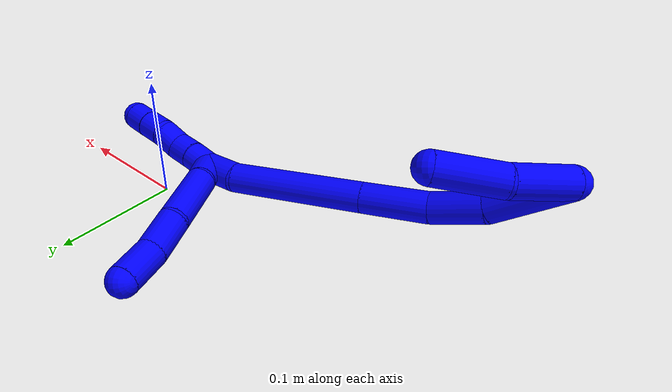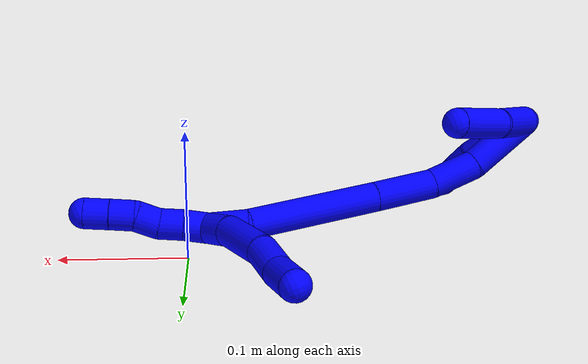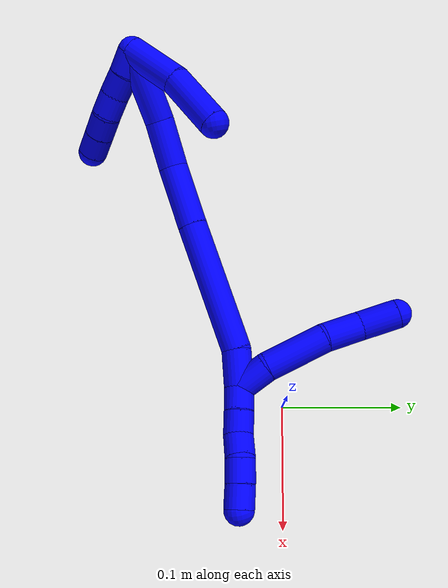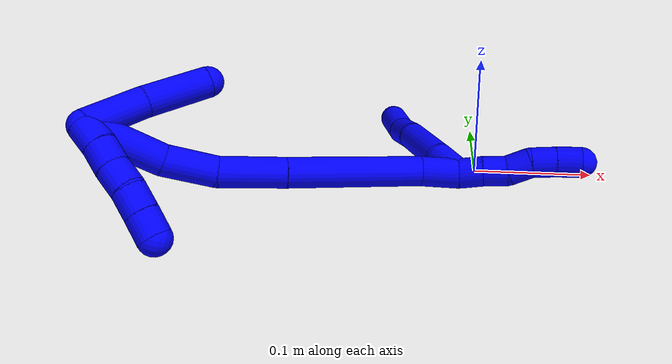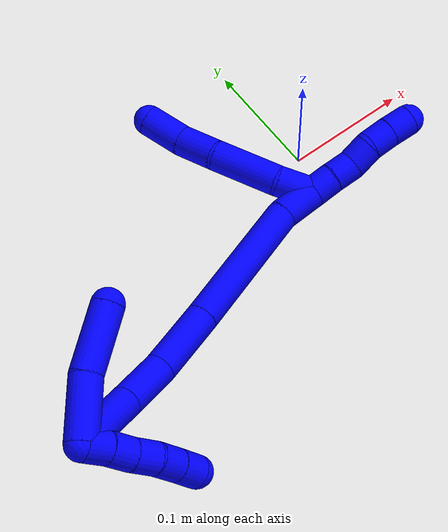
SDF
<sdf version="1.7">
 <world name="default">
  <model name="photoneo_s_sensor">
   <static>1</static>
   <pose>0 0 2 1.57079 1.57079 3.14159</pose>
   <link name="link">
    <inertial><mass>0.1</mass></inertial>
    <sensor name="sensor" type="depth">
     <update_rate>30</update_rate>
     <camera>
      <horizontal_fov>1.22</horizontal_fov>
      <image><width>1920</width><height>1200</height><format>B8G8R8</format></image>
      <clip><near>0.1</near><far>4</far></clip>
      <depth_camera><output>points</output></depth_camera>
     </camera>
     <plugin name="camera_plugin" filename="libgazebo_ros_depth_camera.so">
      <baseline>0.2</baseline>
      <alwaysOn>1</alwaysOn>
      <updateRate>0.0</updateRate>
      <cameraName>camera_ir</cameraName>
      <imageTopicName>/camera/color/image_raw</imageTopicName>
      <cameraInfoTopicName>/camera/color/camera_info</cameraInfoTopicName>
      <depthImageTopicName>/camera/depth/image_raw</depthImageTopicName>
      <depthImageCameraInfoTopicName>/camera/depth/camera_info</depthImageCameraInfoTopicName>
      <pointCloudTopicName>/camera/depth/points</pointCloudTopicName>
      <frameName>fr_optical</frameName>
      <pointCloudCutoff>0.1</pointCloudCutoff>
      <pointCloudCutoffMax>2.0</pointCloudCutoffMax>
      <distortionK1>0</distortionK1>
      <distortionK2>0</distortionK2>
      <distortionK3>0</distortionK3>
      <distortionT1>0</distortionT1>
      <distortionT2>0</distortionT2>
      <CxPrime>0</CxPrime>
      <Cx>0</Cx>
      <Cy>0</Cy>
      <focalLength>0</focalLength>
      <hackBaseline>0</hackBaseline>
     </plugin>
    </sensor>
   </link>
  </model>
  <model name="bin">
   <static>1</static>
   <link name="bottom">
    <collision name="collision-bottom">
     <pose>0 0 -0.01 0 -0 0</pose>
     <geometry><box><size>0.8 0.6 0.02</size></box></geometry>
     <surface>
      <friction><ode><mu>100</mu><mu2>100</mu2></ode></friction>
      <contact><collide_bitmask>65535</collide_bitmask></contact>
     </surface>
    </collision>
   </link>
   <link name="west_wall">
    <collision name="collision-west_wall">
     <pose>-0.41 0 0.1 0 -0 0</pose>
     <geometry><box><size>0.02 0.6 0.2</size></box></geometry>
     <surface>
      <friction><ode><mu>100</mu><mu2>100</mu2></ode></friction>
      <contact><collide_bitmask>65535</collide_bitmask></contact>
     </surface>
    </collision>
   </link>
   <link name="east_wall">
    <collision name="collision-east_wall">
     <pose>0.41 0 0.1 0 -0 0</pose>
     <geometry><box><size>0.02 0.6 0.2</size></box></geometry>
     <surface>
      <friction><ode><mu>100</mu><mu2>100</mu2></ode></friction>
      <contact><collide_bitmask>65535</collide_bitmask></contact>
     </surface>
    </collision>
   </link>
   <link name="south_wall">
    <collision name="collision-south_wall">
     <pose>0 -0.31 0.1 0 -0 0</pose>
     <geometry><box><size>0.8 0.02 0.2</size></box></geometry>
     <surface>
      <friction><ode><mu>100</mu><mu2>100</mu2></ode></friction>
      <contact><collide_bitmask>65535</collide_bitmask></contact>
     </surface>
    </collision>
   </link>
   <link name="north_wall">
    <collision name="collision-north_wall">
     <pose>0 0.31 0.1 0 -0 0</pose>
     <geometry><box><size>0.8 0.02 0.2</size></box></geometry>
     <surface>
      <friction><ode><mu>100</mu><mu2>100</mu2></ode></friction>
      <contact><collide_bitmask>65535</collide_bitmask></contact>
     </surface>
    </collision>
   </link>
  </model>
  <model name="1">
   <static>0</static>
   <link name="1">
    <collision name="collision-cylinder-e_1_2_8">
     <pose>-0.002292 0.012868 0.006302 -1.11541 -0.158599 0.099054</pose>
     <geometry><cylinder><radius>0.0125</radius><length>0.029021</length></cylinder></geometry>
     <surface>
      <friction><ode><mu>1.16</mu><mu2>1.16</mu2><slip1>0</slip1><slip2>0</slip2></ode></friction>
      <contact><ode><kp>1e+06</kp><kd>1</kd><max_vel>0</max_vel><min_depth>0.001</min_depth></ode></contact>
     </surface>
    </collision>
    <visual name="visual-cylinder-e_1_2_8">
     <pose>-0.002292 0.012868 0.006302 -1.11541 -0.158599 0.099054</pose>
     <geometry><cylinder><radius>0.0125</radius><length>0.029021</length></cylinder></geometry>
     <material><ambient>0 0 1 1</ambient></material>
    </visual>
    <collision name="collision-cylinder-e_2_8_9">
     <pose>-0.012045 0.051053 0.019164 -1.31725 -0.277919 0.21564</pose>
     <geometry><cylinder><radius>0.0125</radius><length>0.054392</length></cylinder></geometry>
     <surface>
      <friction><ode><mu>1.16</mu><mu2>1.16</mu2><slip1>0</slip1><slip2>0</slip2></ode></friction>
      <contact><ode><kp>1e+06</kp><kd>1</kd><max_vel>0</max_vel><min_depth>0.001</min_depth></ode></contact>
     </surface>
    </collision>
    <visual name="visual-cylinder-e_2_8_9">
     <pose>-0.012045 0.051053 0.019164 -1.31725 -0.277919 0.21564</pose>
     <geometry><cylinder><radius>0.0125</radius><length>0.054392</length></cylinder></geometry>
     <material><ambient>0 0 1 1</ambient></material>
    </visual>
    <collision name="collision-cylinder-e_3_9_10">
     <pose>-0.026168 0.091348 0.026881 -1.49365 -0.417395 0.387174</pose>
     <geometry><cylinder><radius>0.0125</radius><length>0.032868</length></cylinder></geometry>
     <surface>
      <friction><ode><mu>1.16</mu><mu2>1.16</mu2><slip1>0</slip1><slip2>0</slip2></ode></friction>
      <contact><ode><kp>1e+06</kp><kd>1</kd><max_vel>0</max_vel><min_depth>0.001</min_depth></ode></contact>
     </surface>
    </collision>
    <visual name="visual-cylinder-e_3_9_10">
     <pose>-0.026168 0.091348 0.026881 -1.49365 -0.417395 0.387174</pose>
     <geometry><cylinder><radius>0.0125</radius><length>0.032868</length></cylinder></geometry>
     <material><ambient>0 0 1 1</ambient></material>
    </visual>
    <collision name="collision-cylinder-e_4_10_6">
     <pose>-0.036175 0.122742 0.029933 -1.45594 -0.199719 0.178125</pose>
     <geometry><cylinder><radius>0.0125</radius><length>0.033718</length></cylinder></geometry>
     <surface>
      <friction><ode><mu>1.16</mu><mu2>1.16</mu2><slip1>0</slip1><slip2>0</slip2></ode></friction>
      <contact><ode><kp>1e+06</kp><kd>1</kd><max_vel>0</max_vel><min_depth>0.001</min_depth></ode></contact>
     </surface>
    </collision>
    <visual name="visual-cylinder-e_4_10_6">
     <pose>-0.036175 0.122742 0.029933 -1.45594 -0.199719 0.178125</pose>
     <geometry><cylinder><radius>0.0125</radius><length>0.033718</length></cylinder></geometry>
     <material><ambient>0 0 1 1</ambient></material>
    </visual>
    <collision name="collision-cylinder-e_1_2_11">
     <pose>0.004924 -0.00113 -0.00863 3.01143 0.514811 2.65618</pose>
     <geometry><cylinder><radius>0.0125</radius><length>0.02</length></cylinder></geometry>
     <surface>
      <friction><ode><mu>1.16</mu><mu2>1.16</mu2><slip1>0</slip1><slip2>0</slip2></ode></friction>
      <contact><ode><kp>1e+06</kp><kd>1</kd><max_vel>0</max_vel><min_depth>0.001</min_depth></ode></contact>
     </surface>
    </collision>
    <visual name="visual-cylinder-e_1_2_11">
     <pose>0.004924 -0.00113 -0.00863 3.01143 0.514811 2.65618</pose>
     <geometry><cylinder><radius>0.0125</radius><length>0.02</length></cylinder></geometry>
     <material><ambient>0 0 1 1</ambient></material>
    </visual>
    <collision name="collision-cylinder-e_2_11_12">
     <pose>0.014052 -0.003686 -0.026221 2.98372 0.43394 2.45256</pose>
     <geometry><cylinder><radius>0.0125</radius><length>0.02</length></cylinder></geometry>
     <surface>
      <friction><ode><mu>1.16</mu><mu2>1.16</mu2><slip1>0</slip1><slip2>0</slip2></ode></friction>
      <contact><ode><kp>1e+06</kp><kd>1</kd><max_vel>0</max_vel><min_depth>0.001</min_depth></ode></contact>
     </surface>
    </collision>
    <visual name="visual-cylinder-e_2_11_12">
     <pose>0.014052 -0.003686 -0.026221 2.98372 0.43394 2.45256</pose>
     <geometry><cylinder><radius>0.0125</radius><length>0.02</length></cylinder></geometry>
     <material><ambient>0 0 1 1</ambient></material>
    </visual>
    <collision name="collision-cylinder-e_3_12_13">
     <pose>0.024926 -0.004892 -0.042629 -3.11199 0.73015 -3.06417</pose>
     <geometry><cylinder><radius>0.0125</radius><length>0.02</length></cylinder></geometry>
     <surface>
      <friction><ode><mu>1.16</mu><mu2>1.16</mu2><slip1>0</slip1><slip2>0</slip2></ode></friction>
      <contact><ode><kp>1e+06</kp><kd>1</kd><max_vel>0</max_vel><min_depth>0.001</min_depth></ode></contact>
     </surface>
    </collision>
    <visual name="visual-cylinder-e_3_12_13">
     <pose>0.024926 -0.004892 -0.042629 -3.11199 0.73015 -3.06417</pose>
     <geometry><cylinder><radius>0.0125</radius><length>0.02</length></cylinder></geometry>
     <material><ambient>0 0 1 1</ambient></material>
    </visual>
    <collision name="collision-cylinder-e_4_13_14">
     <pose>0.035859 -0.005883 -0.05904 3.0072 0.44043 2.55751</pose>
     <geometry><cylinder><radius>0.0125</radius><length>0.02</length></cylinder></geometry>
     <surface>
      <friction><ode><mu>1.16</mu><mu2>1.16</mu2><slip1>0</slip1><slip2>0</slip2></ode></friction>
      <contact><ode><kp>1e+06</kp><kd>1</kd><max_vel>0</max_vel><min_depth>0.001</min_depth></ode></contact>
     </surface>
    </collision>
    <visual name="visual-cylinder-e_4_13_14">
     <pose>0.035859 -0.005883 -0.05904 3.0072 0.44043 2.55751</pose>
     <geometry><cylinder><radius>0.0125</radius><length>0.02</length></cylinder></geometry>
     <material><ambient>0 0 1 1</ambient></material>
    </visual>
    <collision name="collision-cylinder-e_5_14_5">
     <pose>0.044204 -0.008804 -0.076972 2.95333 0.420426 2.30843</pose>
     <geometry><cylinder><radius>0.0125</radius><length>0.02</length></cylinder></geometry>
     <surface>
      <friction><ode><mu>1.16</mu><mu2>1.16</mu2><slip1>0</slip1><slip2>0</slip2></ode></friction>
      <contact><ode><kp>1e+06</kp><kd>1</kd><max_vel>0</max_vel><min_depth>0.001</min_depth></ode></contact>
     </surface>
    </collision>
    <visual name="visual-cylinder-e_5_14_5">
     <pose>0.044204 -0.008804 -0.076972 2.95333 0.420426 2.30843</pose>
     <geometry><cylinder><radius>0.0125</radius><length>0.02</length></cylinder></geometry>
     <material><ambient>0 0 1 1</ambient></material>
    </visual>
    <collision name="collision-cylinder-e_1_2_15">
     <pose>-0.00473 0.001222 0.015221 -0.080108 -0.300354 0.012128</pose>
     <geometry><cylinder><radius>0.0125</radius><length>0.031972</length></cylinder></geometry>
     <surface>
      <friction><ode><mu>1.16</mu><mu2>1.16</mu2><slip1>0</slip1><slip2>0</slip2></ode></friction>
      <contact><ode><kp>1e+06</kp><kd>1</kd><max_vel>0</max_vel><min_depth>0.001</min_depth></ode></contact>
     </surface>
    </collision>
    <visual name="visual-cylinder-e_1_2_15">
     <pose>-0.00473 0.001222 0.015221 -0.080108 -0.300354 0.012128</pose>
     <geometry><cylinder><radius>0.0125</radius><length>0.031972</length></cylinder></geometry>
     <material><ambient>0 0 1 1</ambient></material>
    </visual>
    <collision name="collision-cylinder-e_2_15_16">
     <pose>-0.021224 -0.007622 0.084427 0.184345 -0.211053 -0.019581</pose>
     <geometry><cylinder><radius>0.0125</radius><length>0.112322</length></cylinder></geometry>
     <surface>
      <friction><ode><mu>1.16</mu><mu2>1.16</mu2><slip1>0</slip1><slip2>0</slip2></ode></friction>
      <contact><ode><kp>1e+06</kp><kd>1</kd><max_vel>0</max_vel><min_depth>0.001</min_depth></ode></contact>
     </surface>
    </collision>
    <visual name="visual-cylinder-e_2_15_16">
     <pose>-0.021224 -0.007622 0.084427 0.184345 -0.211053 -0.019581</pose>
     <geometry><cylinder><radius>0.0125</radius><length>0.112322</length></cylinder></geometry>
     <material><ambient>0 0 1 1</ambient></material>
    </visual>
    <collision name="collision-cylinder-e_3_16_17">
     <pose>-0.038231 -0.021933 0.164318 0.162396 -0.197065 -0.016088</pose>
     <geometry><cylinder><radius>0.0125</radius><length>0.053539</length></cylinder></geometry>
     <surface>
      <friction><ode><mu>1.16</mu><mu2>1.16</mu2><slip1>0</slip1><slip2>0</slip2></ode></friction>
      <contact><ode><kp>1e+06</kp><kd>1</kd><max_vel>0</max_vel><min_depth>0.001</min_depth></ode></contact>
     </surface>
    </collision>
    <visual name="visual-cylinder-e_3_16_17">
     <pose>-0.038231 -0.021933 0.164318 0.162396 -0.197065 -0.016088</pose>
     <geometry><cylinder><radius>0.0125</radius><length>0.053539</length></cylinder></geometry>
     <material><ambient>0 0 1 1</ambient></material>
    </visual>
    <collision name="collision-cylinder-e_4_17_18">
     <pose>-0.043397 -0.027976 0.210898 0.086789 0.003646 0.000158</pose>
     <geometry><cylinder><radius>0.0125</radius><length>0.041503</length></cylinder></geometry>
     <surface>
      <friction><ode><mu>1.16</mu><mu2>1.16</mu2><slip1>0</slip1><slip2>0</slip2></ode></friction>
      <contact><ode><kp>1e+06</kp><kd>1</kd><max_vel>0</max_vel><min_depth>0.001</min_depth></ode></contact>
     </surface>
    </collision>
    <visual name="visual-cylinder-e_4_17_18">
     <pose>-0.043397 -0.027976 0.210898 0.086789 0.003646 0.000158</pose>
     <geometry><cylinder><radius>0.0125</radius><length>0.041503</length></cylinder></geometry>
     <material><ambient>0 0 1 1</ambient></material>
    </visual>
    <collision name="collision-cylinder-e_5_18_1">
     <pose>-0.035113 -0.033093 0.260582 0.113903 0.274032 0.015722</pose>
     <geometry><cylinder><radius>0.0125</radius><length>0.060663</length></cylinder></geometry>
     <surface>
      <friction><ode><mu>1.16</mu><mu2>1.16</mu2><slip1>0</slip1><slip2>0</slip2></ode></friction>
      <contact><ode><kp>1e+06</kp><kd>1</kd><max_vel>0</max_vel><min_depth>0.001</min_depth></ode></contact>
     </surface>
    </collision>
    <visual name="visual-cylinder-e_5_18_1">
     <pose>-0.035113 -0.033093 0.260582 0.113903 0.274032 0.015722</pose>
     <geometry><cylinder><radius>0.0125</radius><length>0.060663</length></cylinder></geometry>
     <material><ambient>0 0 1 1</ambient></material>
    </visual>
    <collision name="collision-cylinder-e_1_1_19">
     <pose>-0.029327 -0.042523 0.282056 2.46018 -0.244616 -0.667493</pose>
     <geometry><cylinder><radius>0.0125</radius><length>0.02</length></cylinder></geometry>
     <surface>
      <friction><ode><mu>1.16</mu><mu2>1.16</mu2><slip1>0</slip1><slip2>0</slip2></ode></friction>
      <contact><ode><kp>1e+06</kp><kd>1</kd><max_vel>0</max_vel><min_depth>0.001</min_depth></ode></contact>
     </surface>
    </collision>
    <visual name="visual-cylinder-e_1_1_19">
     <pose>-0.029327 -0.042523 0.282056 2.46018 -0.244616 -0.667493</pose>
     <geometry><cylinder><radius>0.0125</radius><length>0.02</length></cylinder></geometry>
     <material><ambient>0 0 1 1</ambient></material>
    </visual>
    <collision name="collision-cylinder-e_2_19_20">
     <pose>-0.034815 -0.055272 0.267699 2.36996 -0.311735 -0.738298</pose>
     <geometry><cylinder><radius>0.0125</radius><length>0.02</length></cylinder></geometry>
     <surface>
      <friction><ode><mu>1.16</mu><mu2>1.16</mu2><slip1>0</slip1><slip2>0</slip2></ode></friction>
      <contact><ode><kp>1e+06</kp><kd>1</kd><max_vel>0</max_vel><min_depth>0.001</min_depth></ode></contact>
     </surface>
    </collision>
    <visual name="visual-cylinder-e_2_19_20">
     <pose>-0.034815 -0.055272 0.267699 2.36996 -0.311735 -0.738298</pose>
     <geometry><cylinder><radius>0.0125</radius><length>0.02</length></cylinder></geometry>
     <material><ambient>0 0 1 1</ambient></material>
    </visual>
    <collision name="collision-cylinder-e_3_20_21">
     <pose>-0.040329 -0.06817 0.253473 2.43964 -0.247184 -0.654196</pose>
     <geometry><cylinder><radius>0.0125</radius><length>0.02</length></cylinder></geometry>
     <surface>
      <friction><ode><mu>1.16</mu><mu2>1.16</mu2><slip1>0</slip1><slip2>0</slip2></ode></friction>
      <contact><ode><kp>1e+06</kp><kd>1</kd><max_vel>0</max_vel><min_depth>0.001</min_depth></ode></contact>
     </surface>
    </collision>
    <visual name="visual-cylinder-e_3_20_21">
     <pose>-0.040329 -0.06817 0.253473 2.43964 -0.247184 -0.654196</pose>
     <geometry><cylinder><radius>0.0125</radius><length>0.02</length></cylinder></geometry>
     <material><ambient>0 0 1 1</ambient></material>
    </visual>
    <collision name="collision-cylinder-e_4_21_22">
     <pose>-0.046908 -0.080458 0.239243 2.41824 -0.425919 -1.03852</pose>
     <geometry><cylinder><radius>0.0125</radius><length>0.02</length></cylinder></geometry>
     <surface>
      <friction><ode><mu>1.16</mu><mu2>1.16</mu2><slip1>0</slip1><slip2>0</slip2></ode></friction>
      <contact><ode><kp>1e+06</kp><kd>1</kd><max_vel>0</max_vel><min_depth>0.001</min_depth></ode></contact>
     </surface>
    </collision>
    <visual name="visual-cylinder-e_4_21_22">
     <pose>-0.046908 -0.080458 0.239243 2.41824 -0.425919 -1.03852</pose>
     <geometry><cylinder><radius>0.0125</radius><length>0.02</length></cylinder></geometry>
     <material><ambient>0 0 1 1</ambient></material>
    </visual>
    <collision name="collision-cylinder-e_5_22_4">
     <pose>-0.055336 -0.092545 0.225722 2.40596 -0.44415 -1.06005</pose>
     <geometry><cylinder><radius>0.0125</radius><length>0.02</length></cylinder></geometry>
     <surface>
      <friction><ode><mu>1.16</mu><mu2>1.16</mu2><slip1>0</slip1><slip2>0</slip2></ode></friction>
      <contact><ode><kp>1e+06</kp><kd>1</kd><max_vel>0</max_vel><min_depth>0.001</min_depth></ode></contact>
     </surface>
    </collision>
    <visual name="visual-cylinder-e_5_22_4">
     <pose>-0.055336 -0.092545 0.225722 2.40596 -0.44415 -1.06005</pose>
     <geometry><cylinder><radius>0.0125</radius><length>0.02</length></cylinder></geometry>
     <material><ambient>0 0 1 1</ambient></material>
    </visual>
    <collision name="collision-cylinder-e_1_1_23">
     <pose>-0.020726 -0.019751 0.273278 -2.34565 0.259035 -0.600874</pose>
     <geometry><cylinder><radius>0.0125</radius><length>0.048246</length></cylinder></geometry>
     <surface>
      <friction><ode><mu>1.16</mu><mu2>1.16</mu2><slip1>0</slip1><slip2>0</slip2></ode></friction>
      <contact><ode><kp>1e+06</kp><kd>1</kd><max_vel>0</max_vel><min_depth>0.001</min_depth></ode></contact>
     </surface>
    </collision>
    <visual name="visual-cylinder-e_1_1_23">
     <pose>-0.020726 -0.019751 0.273278 -2.34565 0.259035 -0.600874</pose>
     <geometry><cylinder><radius>0.0125</radius><length>0.048246</length></cylinder></geometry>
     <material><ambient>0 0 1 1</ambient></material>
    </visual>
    <collision name="collision-cylinder-e_2_23_3">
     <pose>-0.005592 0.010074 0.236564 -2.56857 0.353361 -1.08966</pose>
     <geometry><cylinder><radius>0.0125</radius><length>0.051754</length></cylinder></geometry>
     <surface>
      <friction><ode><mu>1.16</mu><mu2>1.16</mu2><slip1>0</slip1><slip2>0</slip2></ode></friction>
      <contact><ode><kp>1e+06</kp><kd>1</kd><max_vel>0</max_vel><min_depth>0.001</min_depth></ode></contact>
     </surface>
    </collision>
    <visual name="visual-cylinder-e_2_23_3">
     <pose>-0.005592 0.010074 0.236564 -2.56857 0.353361 -1.08966</pose>
     <geometry><cylinder><radius>0.0125</radius><length>0.051754</length></cylinder></geometry>
     <material><ambient>0 0 1 1</ambient></material>
    </visual>
    <collision name="collision-sphere-3">
     <pose>0.003363 0.023237 0.216164 0 -0 0</pose>
     <geometry><sphere><radius>0.0125</radius></sphere></geometry>
     <surface>
      <friction><ode><mu>1.16</mu><mu2>1.16</mu2><slip1>0</slip1><slip2>0</slip2></ode></friction>
      <contact><ode><kp>1e+06</kp><kd>1</kd><max_vel>0</max_vel><min_depth>0.001</min_depth></ode></contact>
     </surface>
    </collision>
    <visual name="visual-sphere-3">
     <pose>0.003363 0.023237 0.216164 0 -0 0</pose>
     <geometry><sphere><radius>0.0125</radius></sphere></geometry>
     <material><ambient>0 0 1 1</ambient></material>
    </visual>
    <collision name="collision-sphere-23">
     <pose>-0.014546 -0.003089 0.256964 0 -0 0</pose>
     <geometry><sphere><radius>0.0125</radius></sphere></geometry>
     <surface>
      <friction><ode><mu>1.16</mu><mu2>1.16</mu2><slip1>0</slip1><slip2>0</slip2></ode></friction>
      <contact><ode><kp>1e+06</kp><kd>1</kd><max_vel>0</max_vel><min_depth>0.001</min_depth></ode></contact>
     </surface>
    </collision>
    <visual name="visual-sphere-23">
     <pose>-0.014546 -0.003089 0.256964 0 -0 0</pose>
     <geometry><sphere><radius>0.0125</radius></sphere></geometry>
     <material><ambient>0 0 1 1</ambient></material>
    </visual>
    <collision name="collision-sphere-4">
     <pose>-0.059633 -0.098605 0.219027 0 -0 0</pose>
     <geometry><sphere><radius>0.0125</radius></sphere></geometry>
     <surface>
      <friction><ode><mu>1.16</mu><mu2>1.16</mu2><slip1>0</slip1><slip2>0</slip2></ode></friction>
      <contact><ode><kp>1e+06</kp><kd>1</kd><max_vel>0</max_vel><min_depth>0.001</min_depth></ode></contact>
     </surface>
    </collision>
    <visual name="visual-sphere-4">
     <pose>-0.059633 -0.098605 0.219027 0 -0 0</pose>
     <geometry><sphere><radius>0.0125</radius></sphere></geometry>
     <material><ambient>0 0 1 1</ambient></material>
    </visual>
    <collision name="collision-sphere-22">
     <pose>-0.051039 -0.086486 0.232416 0 -0 0</pose>
     <geometry><sphere><radius>0.0125</radius></sphere></geometry>
     <surface>
      <friction><ode><mu>1.16</mu><mu2>1.16</mu2><slip1>0</slip1><slip2>0</slip2></ode></friction>
      <contact><ode><kp>1e+06</kp><kd>1</kd><max_vel>0</max_vel><min_depth>0.001</min_depth></ode></contact>
     </surface>
    </collision>
    <visual name="visual-sphere-22">
     <pose>-0.051039 -0.086486 0.232416 0 -0 0</pose>
     <geometry><sphere><radius>0.0125</radius></sphere></geometry>
     <material><ambient>0 0 1 1</ambient></material>
    </visual>
    <collision name="collision-sphere-21">
     <pose>-0.042776 -0.074431 0.246069 0 -0 0</pose>
     <geometry><sphere><radius>0.0125</radius></sphere></geometry>
     <surface>
      <friction><ode><mu>1.16</mu><mu2>1.16</mu2><slip1>0</slip1><slip2>0</slip2></ode></friction>
      <contact><ode><kp>1e+06</kp><kd>1</kd><max_vel>0</max_vel><min_depth>0.001</min_depth></ode></contact>
     </surface>
    </collision>
    <visual name="visual-sphere-21">
     <pose>-0.042776 -0.074431 0.246069 0 -0 0</pose>
     <geometry><sphere><radius>0.0125</radius></sphere></geometry>
     <material><ambient>0 0 1 1</ambient></material>
    </visual>
    <collision name="collision-sphere-20">
     <pose>-0.037883 -0.061909 0.260876 0 -0 0</pose>
     <geometry><sphere><radius>0.0125</radius></sphere></geometry>
     <surface>
      <friction><ode><mu>1.16</mu><mu2>1.16</mu2><slip1>0</slip1><slip2>0</slip2></ode></friction>
      <contact><ode><kp>1e+06</kp><kd>1</kd><max_vel>0</max_vel><min_depth>0.001</min_depth></ode></contact>
     </surface>
    </collision>
    <visual name="visual-sphere-20">
     <pose>-0.037883 -0.061909 0.260876 0 -0 0</pose>
     <geometry><sphere><radius>0.0125</radius></sphere></geometry>
     <material><ambient>0 0 1 1</ambient></material>
    </visual>
    <collision name="collision-sphere-11">
     <pose>0.009847 -0.00226 -0.01726 0 -0 0</pose>
     <geometry><sphere><radius>0.0125</radius></sphere></geometry>
     <surface>
      <friction><ode><mu>1.16</mu><mu2>1.16</mu2><slip1>0</slip1><slip2>0</slip2></ode></friction>
      <contact><ode><kp>1e+06</kp><kd>1</kd><max_vel>0</max_vel><min_depth>0.001</min_depth></ode></contact>
     </surface>
    </collision>
    <visual name="visual-sphere-11">
     <pose>0.009847 -0.00226 -0.01726 0 -0 0</pose>
     <geometry><sphere><radius>0.0125</radius></sphere></geometry>
     <material><ambient>0 0 1 1</ambient></material>
    </visual>
    <collision name="collision-sphere-6">
     <pose>-0.03952 0.139157 0.031827 0 -0 0</pose>
     <geometry><sphere><radius>0.0125</radius></sphere></geometry>
     <surface>
      <friction><ode><mu>1.16</mu><mu2>1.16</mu2><slip1>0</slip1><slip2>0</slip2></ode></friction>
      <contact><ode><kp>1e+06</kp><kd>1</kd><max_vel>0</max_vel><min_depth>0.001</min_depth></ode></contact>
     </surface>
    </collision>
    <visual name="visual-sphere-6">
     <pose>-0.03952 0.139157 0.031827 0 -0 0</pose>
     <geometry><sphere><radius>0.0125</radius></sphere></geometry>
     <material><ambient>0 0 1 1</ambient></material>
    </visual>
    <collision name="collision-sphere-10">
     <pose>-0.03283 0.106327 0.028039 0 -0 0</pose>
     <geometry><sphere><radius>0.0125</radius></sphere></geometry>
     <surface>
      <friction><ode><mu>1.16</mu><mu2>1.16</mu2><slip1>0</slip1><slip2>0</slip2></ode></friction>
      <contact><ode><kp>1e+06</kp><kd>1</kd><max_vel>0</max_vel><min_depth>0.001</min_depth></ode></contact>
     </surface>
    </collision>
    <visual name="visual-sphere-10">
     <pose>-0.03283 0.106327 0.028039 0 -0 0</pose>
     <geometry><sphere><radius>0.0125</radius></sphere></geometry>
     <material><ambient>0 0 1 1</ambient></material>
    </visual>
    <collision name="collision-sphere-9">
     <pose>-0.019506 0.07637 0.025724 0 -0 0</pose>
     <geometry><sphere><radius>0.0125</radius></sphere></geometry>
     <surface>
      <friction><ode><mu>1.16</mu><mu2>1.16</mu2><slip1>0</slip1><slip2>0</slip2></ode></friction>
      <contact><ode><kp>1e+06</kp><kd>1</kd><max_vel>0</max_vel><min_depth>0.001</min_depth></ode></contact>
     </surface>
    </collision>
    <visual name="visual-sphere-9">
     <pose>-0.019506 0.07637 0.025724 0 -0 0</pose>
     <geometry><sphere><radius>0.0125</radius></sphere></geometry>
     <material><ambient>0 0 1 1</ambient></material>
    </visual>
    <collision name="collision-sphere-2">
     <geometry><sphere><radius>0.0125</radius></sphere></geometry>
     <surface>
      <friction><ode><mu>1.16</mu><mu2>1.16</mu2><slip1>0</slip1><slip2>0</slip2></ode></friction>
      <contact><ode><kp>1e+06</kp><kd>1</kd><max_vel>0</max_vel><min_depth>0.001</min_depth></ode></contact>
     </surface>
    </collision>
    <visual name="visual-sphere-2">
     <geometry><sphere><radius>0.0125</radius></sphere></geometry>
     <material><ambient>0 0 1 1</ambient></material>
    </visual>
    <collision name="collision-sphere-19">
     <pose>-0.031748 -0.048635 0.274521 0 -0 0</pose>
     <geometry><sphere><radius>0.0125</radius></sphere></geometry>
     <surface>
      <friction><ode><mu>1.16</mu><mu2>1.16</mu2><slip1>0</slip1><slip2>0</slip2></ode></friction>
      <contact><ode><kp>1e+06</kp><kd>1</kd><max_vel>0</max_vel><min_depth>0.001</min_depth></ode></contact>
     </surface>
    </collision>
    <visual name="visual-sphere-19">
     <pose>-0.031748 -0.048635 0.274521 0 -0 0</pose>
     <geometry><sphere><radius>0.0125</radius></sphere></geometry>
     <material><ambient>0 0 1 1</ambient></material>
    </visual>
    <collision name="collision-sphere-8">
     <pose>-0.004583 0.025736 0.012604 0 -0 0</pose>
     <geometry><sphere><radius>0.0125</radius></sphere></geometry>
     <surface>
      <friction><ode><mu>1.16</mu><mu2>1.16</mu2><slip1>0</slip1><slip2>0</slip2></ode></friction>
      <contact><ode><kp>1e+06</kp><kd>1</kd><max_vel>0</max_vel><min_depth>0.001</min_depth></ode></contact>
     </surface>
    </collision>
    <visual name="visual-sphere-8">
     <pose>-0.004583 0.025736 0.012604 0 -0 0</pose>
     <geometry><sphere><radius>0.0125</radius></sphere></geometry>
     <material><ambient>0 0 1 1</ambient></material>
    </visual>
    <collision name="collision-sphere-12">
     <pose>0.018256 -0.005112 -0.035181 0 -0 0</pose>
     <geometry><sphere><radius>0.0125</radius></sphere></geometry>
     <surface>
      <friction><ode><mu>1.16</mu><mu2>1.16</mu2><slip1>0</slip1><slip2>0</slip2></ode></friction>
      <contact><ode><kp>1e+06</kp><kd>1</kd><max_vel>0</max_vel><min_depth>0.001</min_depth></ode></contact>
     </surface>
    </collision>
    <visual name="visual-sphere-12">
     <pose>0.018256 -0.005112 -0.035181 0 -0 0</pose>
     <geometry><sphere><radius>0.0125</radius></sphere></geometry>
     <material><ambient>0 0 1 1</ambient></material>
    </visual>
    <collision name="collision-sphere-13">
     <pose>0.031596 -0.004671 -0.050076 0 -0 0</pose>
     <geometry><sphere><radius>0.0125</radius></sphere></geometry>
     <surface>
      <friction><ode><mu>1.16</mu><mu2>1.16</mu2><slip1>0</slip1><slip2>0</slip2></ode></friction>
      <contact><ode><kp>1e+06</kp><kd>1</kd><max_vel>0</max_vel><min_depth>0.001</min_depth></ode></contact>
     </surface>
    </collision>
    <visual name="visual-sphere-13">
     <pose>0.031596 -0.004671 -0.050076 0 -0 0</pose>
     <geometry><sphere><radius>0.0125</radius></sphere></geometry>
     <material><ambient>0 0 1 1</ambient></material>
    </visual>
    <collision name="collision-sphere-14">
     <pose>0.040123 -0.007095 -0.068004 0 -0 0</pose>
     <geometry><sphere><radius>0.0125</radius></sphere></geometry>
     <surface>
      <friction><ode><mu>1.16</mu><mu2>1.16</mu2><slip1>0</slip1><slip2>0</slip2></ode></friction>
      <contact><ode><kp>1e+06</kp><kd>1</kd><max_vel>0</max_vel><min_depth>0.001</min_depth></ode></contact>
     </surface>
    </collision>
    <visual name="visual-sphere-14">
     <pose>0.040123 -0.007095 -0.068004 0 -0 0</pose>
     <geometry><sphere><radius>0.0125</radius></sphere></geometry>
     <material><ambient>0 0 1 1</ambient></material>
    </visual>
    <collision name="collision-sphere-5">
     <pose>0.048286 -0.010512 -0.08594 0 -0 0</pose>
     <geometry><sphere><radius>0.0125</radius></sphere></geometry>
     <surface>
      <friction><ode><mu>1.16</mu><mu2>1.16</mu2><slip1>0</slip1><slip2>0</slip2></ode></friction>
      <contact><ode><kp>1e+06</kp><kd>1</kd><max_vel>0</max_vel><min_depth>0.001</min_depth></ode></contact>
     </surface>
    </collision>
    <visual name="visual-sphere-5">
     <pose>0.048286 -0.010512 -0.08594 0 -0 0</pose>
     <geometry><sphere><radius>0.0125</radius></sphere></geometry>
     <material><ambient>0 0 1 1</ambient></material>
    </visual>
    <collision name="collision-sphere-15">
     <pose>-0.009459 0.002444 0.030443 0 -0 0</pose>
     <geometry><sphere><radius>0.0125</radius></sphere></geometry>
     <surface>
      <friction><ode><mu>1.16</mu><mu2>1.16</mu2><slip1>0</slip1><slip2>0</slip2></ode></friction>
      <contact><ode><kp>1e+06</kp><kd>1</kd><max_vel>0</max_vel><min_depth>0.001</min_depth></ode></contact>
     </surface>
    </collision>
    <visual name="visual-sphere-15">
     <pose>-0.009459 0.002444 0.030443 0 -0 0</pose>
     <geometry><sphere><radius>0.0125</radius></sphere></geometry>
     <material><ambient>0 0 1 1</ambient></material>
    </visual>
    <collision name="collision-sphere-16">
     <pose>-0.03299 -0.017688 0.138412 0 -0 0</pose>
     <geometry><sphere><radius>0.0125</radius></sphere></geometry>
     <surface>
      <friction><ode><mu>1.16</mu><mu2>1.16</mu2><slip1>0</slip1><slip2>0</slip2></ode></friction>
      <contact><ode><kp>1e+06</kp><kd>1</kd><max_vel>0</max_vel><min_depth>0.001</min_depth></ode></contact>
     </surface>
    </collision>
    <visual name="visual-sphere-16">
     <pose>-0.03299 -0.017688 0.138412 0 -0 0</pose>
     <geometry><sphere><radius>0.0125</radius></sphere></geometry>
     <material><ambient>0 0 1 1</ambient></material>
    </visual>
    <collision name="collision-sphere-17">
     <pose>-0.043472 -0.026177 0.190224 0 -0 0</pose>
     <geometry><sphere><radius>0.0125</radius></sphere></geometry>
     <surface>
      <friction><ode><mu>1.16</mu><mu2>1.16</mu2><slip1>0</slip1><slip2>0</slip2></ode></friction>
      <contact><ode><kp>1e+06</kp><kd>1</kd><max_vel>0</max_vel><min_depth>0.001</min_depth></ode></contact>
     </surface>
    </collision>
    <visual name="visual-sphere-17">
     <pose>-0.043472 -0.026177 0.190224 0 -0 0</pose>
     <geometry><sphere><radius>0.0125</radius></sphere></geometry>
     <material><ambient>0 0 1 1</ambient></material>
    </visual>
    <collision name="collision-sphere-18">
     <pose>-0.043321 -0.029775 0.231571 0 -0 0</pose>
     <geometry><sphere><radius>0.0125</radius></sphere></geometry>
     <surface>
      <friction><ode><mu>1.16</mu><mu2>1.16</mu2><slip1>0</slip1><slip2>0</slip2></ode></friction>
      <contact><ode><kp>1e+06</kp><kd>1</kd><max_vel>0</max_vel><min_depth>0.001</min_depth></ode></contact>
     </surface>
    </collision>
    <visual name="visual-sphere-18">
     <pose>-0.043321 -0.029775 0.231571 0 -0 0</pose>
     <geometry><sphere><radius>0.0125</radius></sphere></geometry>
     <material><ambient>0 0 1 1</ambient></material>
    </visual>
    <collision name="collision-sphere-1">
     <pose>-0.026905 -0.036412 0.289592 0 -0 0</pose>
     <geometry><sphere><radius>0.0125</radius></sphere></geometry>
     <surface>
      <friction><ode><mu>1.16</mu><mu2>1.16</mu2><slip1>0</slip1><slip2>0</slip2></ode></friction>
      <contact><ode><kp>1e+06</kp><kd>1</kd><max_vel>0</max_vel><min_depth>0.001</min_depth></ode></contact>
     </surface>
    </collision>
    <visual name="visual-sphere-1">
     <pose>-0.026905 -0.036412 0.289592 0 -0 0</pose>
     <geometry><sphere><radius>0.0125</radius></sphere></geometry>
     <material><ambient>0 0 1 1</ambient></material>
    </visual>
    <inertial>
     <pose>-0.019012 -0.003423 0.123957 0 -0 0</pose>
     <mass>0.75</mass>
     <inertia>
      <ixx>0.000188</ixx>
      <ixy>0</ixy>
      <ixz>0</ixz>
      <iyy>0.000162</iyy>
      <iyz>0</iyz>
      <izz>2.2e-05</izz>
     </inertia>
    </inertial>
   </link>
   <pose>-0.015379 -0.035962 0.012486 0.516134 -1.17977 -0.341757</pose>
  </model>
 </world>
</sdf>
